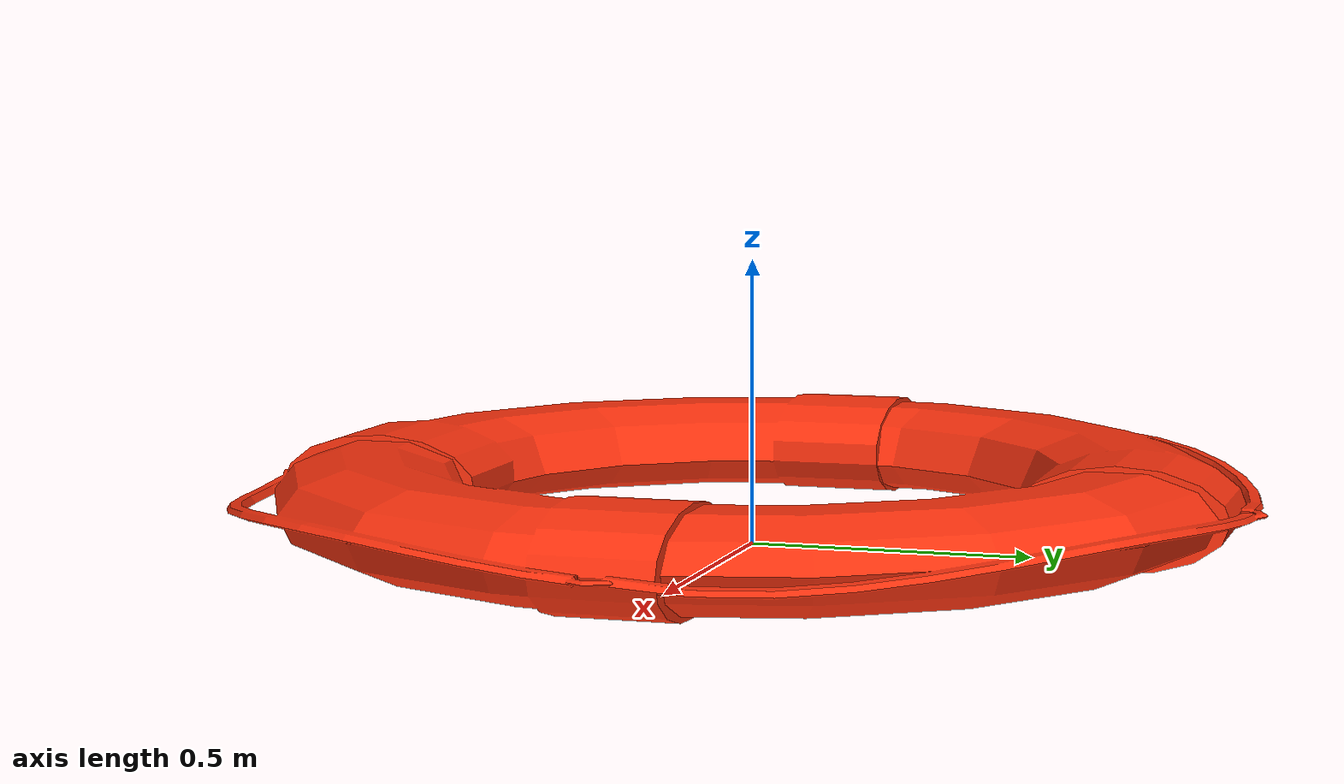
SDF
<?xml version="1.0"?>
<sdf version="1.6">
  <model name="f250_lifebuoy_low_poly_visual">
    <static>true</static>
    <link name="visual_link">
      <visual name="lifebuoy_low_poly_visual">
        <geometry>
          <mesh>
            <uri>model://f250_lifebuoy_low_poly_visual/meshes/lifebuoy_low_poly_materialized.obj</uri>
          </mesh>
        </geometry>
        <material>
          <ambient>1.0 0.2 0.06 1.0</ambient>
          <diffuse>1.0 0.2 0.06 1.0</diffuse>
          <specular>0.12 0.12 0.12 1.0</specular>
        </material>
      </visual>
    </link>
  </model>
</sdf>
